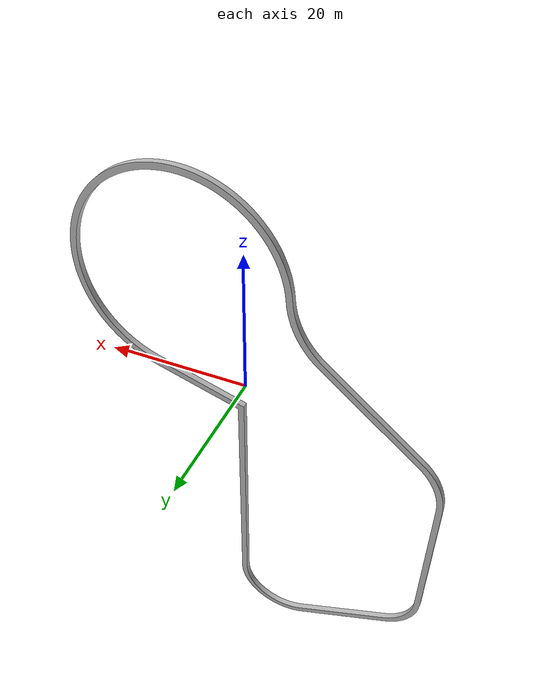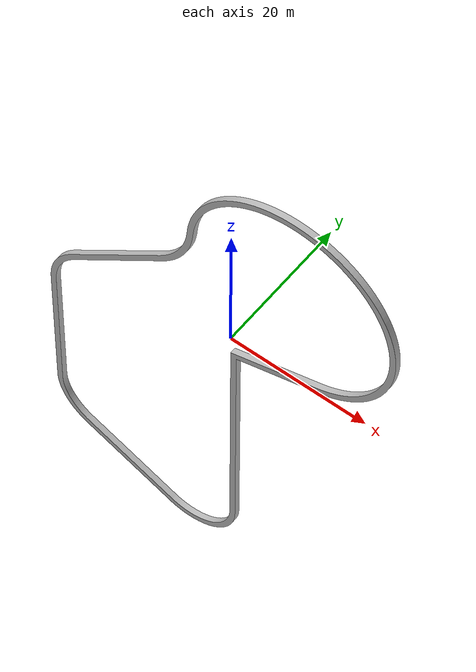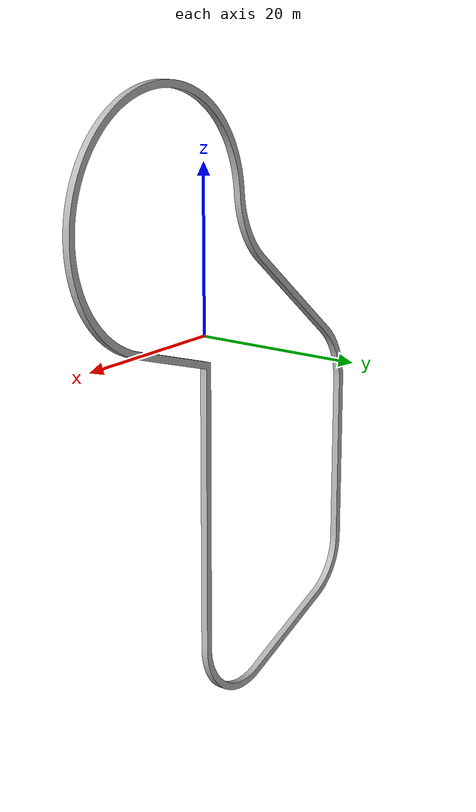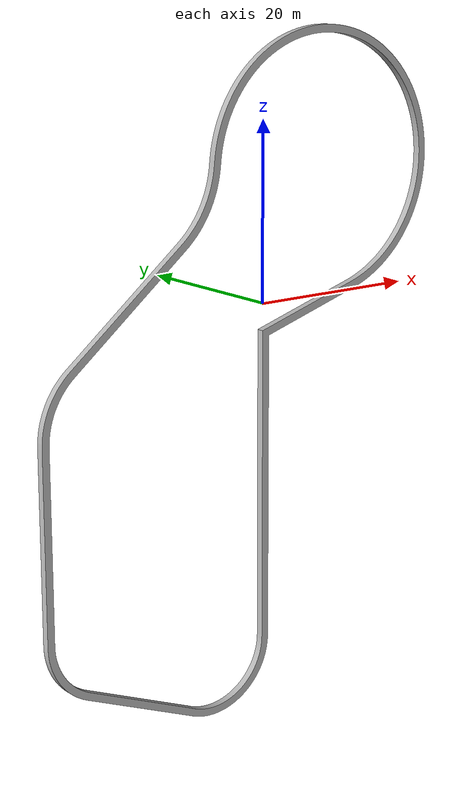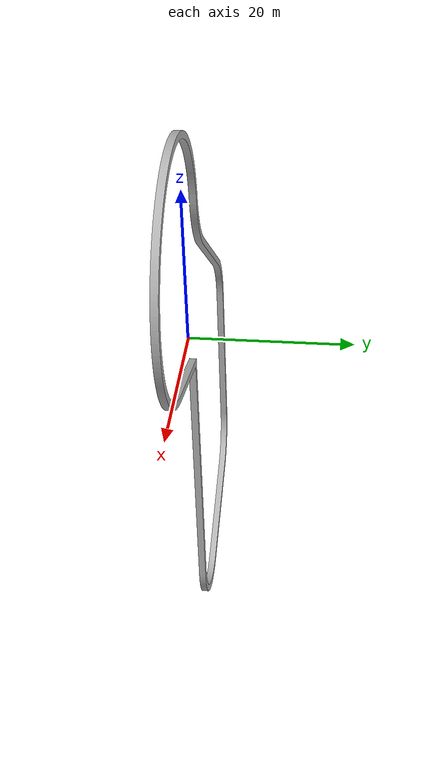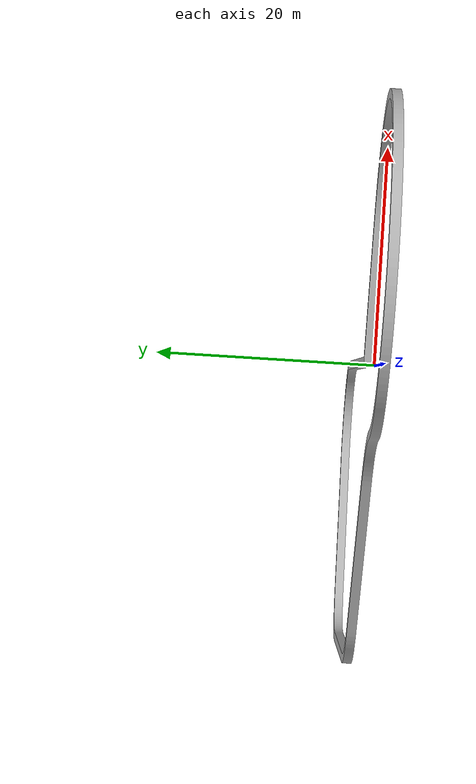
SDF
<?xml version='1.0'?>
<sdf version='1.6'>
  <model name="walll2">
    <static>true</static>
    <pose>0 0 0 0 0 0</pose>

    <link name="walll2">
      <pose>0 0 0 0 0 0</pose>
      <visual name="walll">
        <geometry>
          <mesh>
            <uri>model://walll2/meshes/RT2_Wall2.dae</uri>
            <scale>1.7 1.7 1.7</scale>
          </mesh>
        </geometry>
      </visual>
      <collision name="walll">
        <geometry>
          <mesh>
            <uri>model://walll2/meshes/RT2_Wall2.dae</uri>
            <scale>1.7 1.7 1.7</scale>
          </mesh>
        </geometry>
      </collision>
    </link>

  </model>
</sdf>
